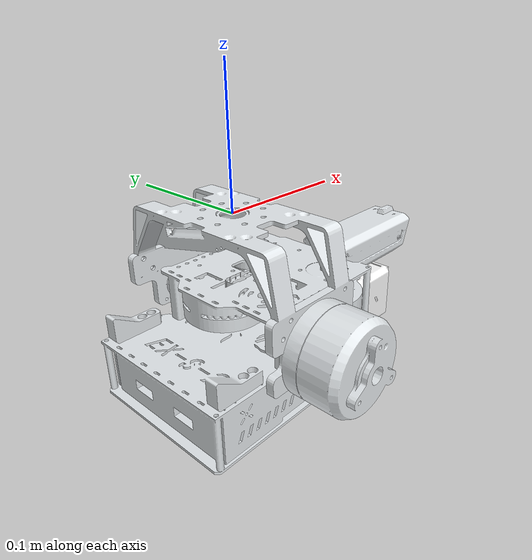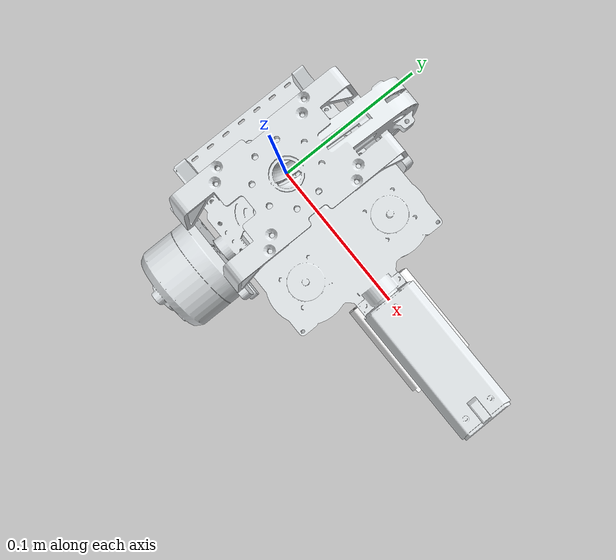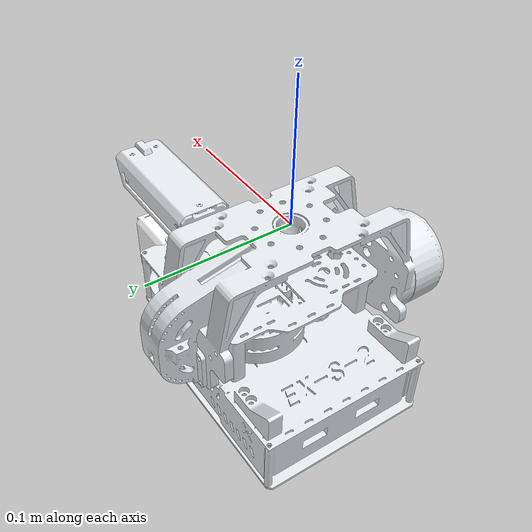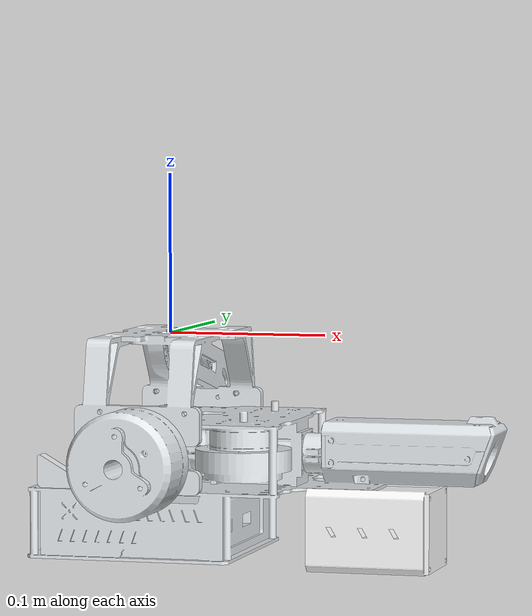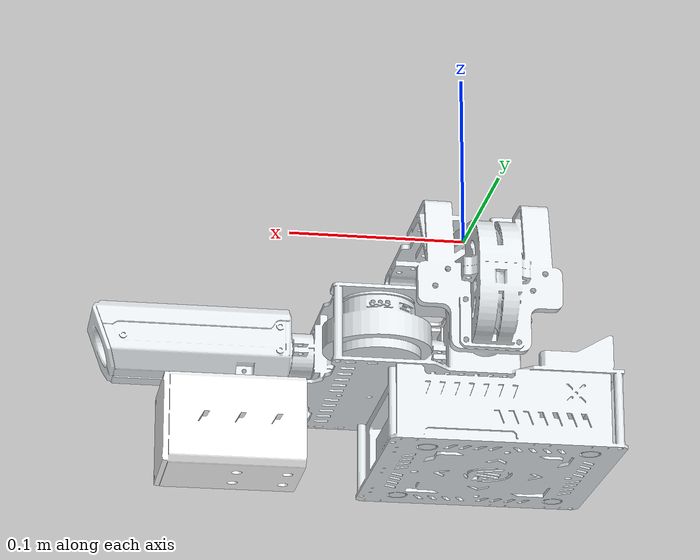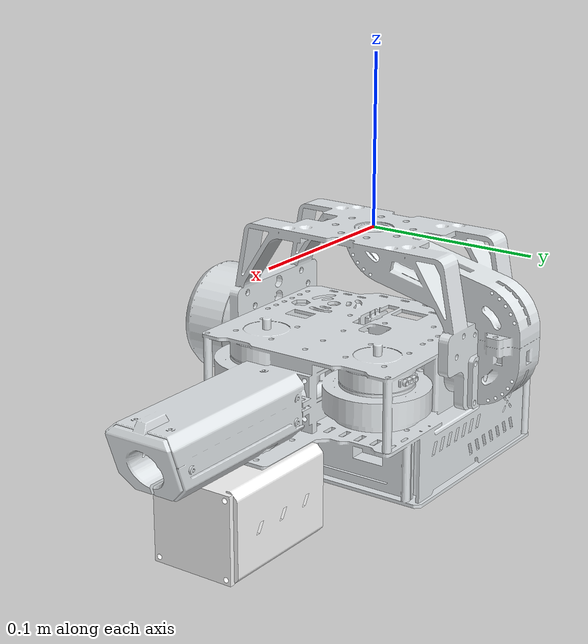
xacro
<?xml version="1.0" encoding="utf-8"?>

<robot name="gimbal"
    xmlns:xacro="http://ros.org/wiki/xacro">

    <link name="base_link" />

    <link name="yaw_link">
        <inertial>
            <origin xyz="6.5483E-08 -0.050209 -0.056865" rpy="0 0 0" />
            <mass value="0.54474" />
            <inertia ixx="0.00022219" ixy="-5.1209E-08" ixz="3.7372E-08" iyy="0.00026122" iyz="1.1456E-05" izz="0.0002457" />
        </inertial>
        <visual>
            <origin xyz="0 0 0" rpy="0 0 0" />
            <geometry>
                <mesh filename="package://rm_pioneer_description/meshes/guard/yaw_link.stl" />
            </geometry>
            <material name="">
                <color rgba="0.89804 0.91765 0.92941 1" />
            </material>
        </visual>
        <collision>
            <origin xyz="0 0 0" rpy="0 0 0" />
            <geometry>
                <mesh filename="package://rm_pioneer_description/meshes/guard/yaw_link.stl" />
            </geometry>
        </collision>
    </link>

    <joint name="yaw_joint" type="continuous">
        <origin xyz="0 0 0" rpy="0 0 0" />
        <parent link="base_link" />
        <child link="yaw_link" />
        <axis xyz="0 0 1" />
    </joint>

    <link name="pitch_link">
        <inertial>
            <origin xyz="0.023038 -0.00034952 -0.022985" rpy="0 0 0" />
            <mass value="1.209" />
            <inertia ixx="0.00096057" ixy="-7.7082E-06" ixz="-1.5997E-06" iyy="0.0013203" iyz="4.1017E-07" izz="0.0020944" />
        </inertial>
        <visual>
            <origin xyz="0 0 0" rpy="0 0 0" />
            <geometry>
                <mesh filename="package://rm_pioneer_description/meshes/guard/pitch_link.stl" />
            </geometry>
            <material name="">
                <color rgba="0.89804 0.91765 0.92941 1" />
            </material>
        </visual>
        <collision>
            <origin xyz="0 0 0" rpy="0 0 0" />
            <geometry>
                <mesh filename="package://rm_pioneer_description/meshes/guard/pitch_link.stl" />
            </geometry>
        </collision>
    </link>

    <joint name="pitch_joint" type="revolute">
        <origin xyz="0 0.003 -0.074" rpy="0 0 0" />
        <parent link="yaw_link" />
        <child link="pitch_link" />
        <axis xyz="0 1 0" />
        <limit lower="-0.6" upper="0.5" effort="1.2" velocity="31"/>
    </joint>

    <link name="shooter_link" />

    <joint name="shooter_joint" type="fixed">
        <origin xyz="0 0.003 -0.074" rpy="0 0 0" />
        <parent link="base_link" />
        <child link="shooter_link" />
    </joint>

    <link name="camera_base_link">
        <inertial>
            <origin xyz="-5.2307E-05 -1.5998E-05 0.00049253" rpy="0 0 0" />
            <mass value="0.15794" />
            <inertia ixx="7.7178E-05" ixy="-7.743E-08" ixz="-1.6158E-07" iyy="0.00010028" iyz="-2.0158E-08" izz="0.00010682" />
        </inertial>
        <visual>
            <origin xyz="0 0 0" rpy="0 0 0" />
            <geometry>
                <mesh filename="package://rm_pioneer_description/meshes/guard/camera_base_link.stl" />
            </geometry>
            <material name="">
                <color rgba="1 1 1 1" />
            </material>
        </visual>
        <collision>
            <origin xyz="0 0 0" rpy="0 0 0" />
            <geometry>
                <mesh filename="package://rm_pioneer_description/meshes/guard/camera_base_link.stl" />
            </geometry>
        </collision>
    </link>

    <joint name="camera_joint" type="fixed">
        <origin xyz="0.132 0 -0.048" rpy="0 0 0" />
        <parent link="pitch_link" />
        <child link="camera_base_link" />
        <axis xyz="0 0 0" />
    </joint>

</robot>
